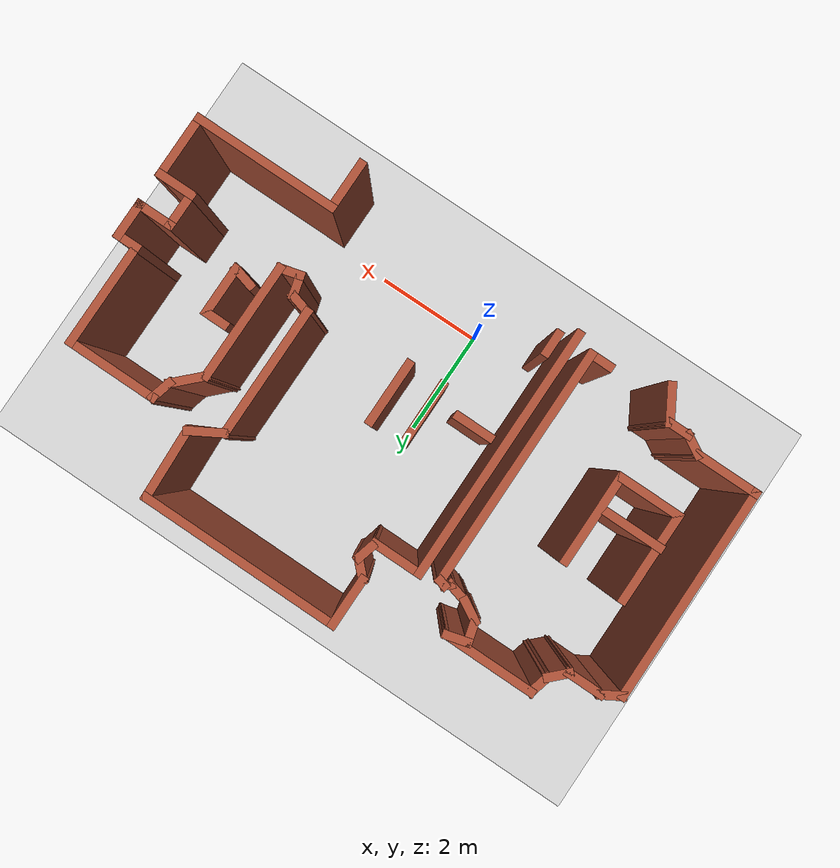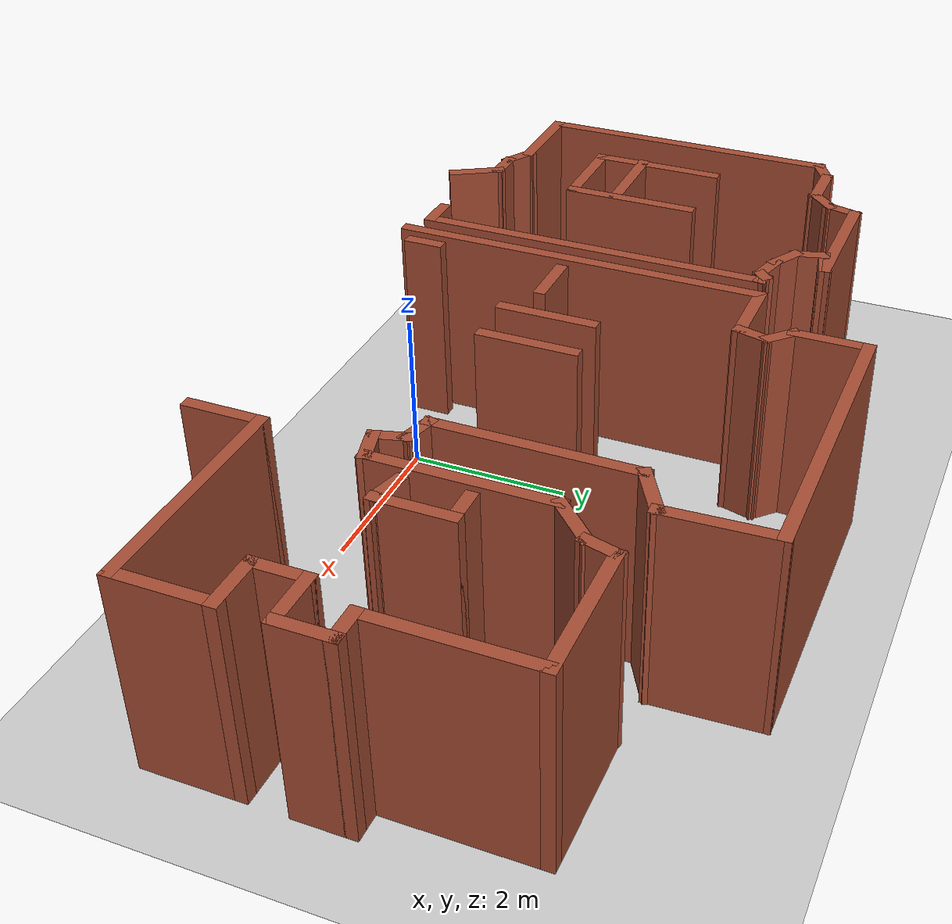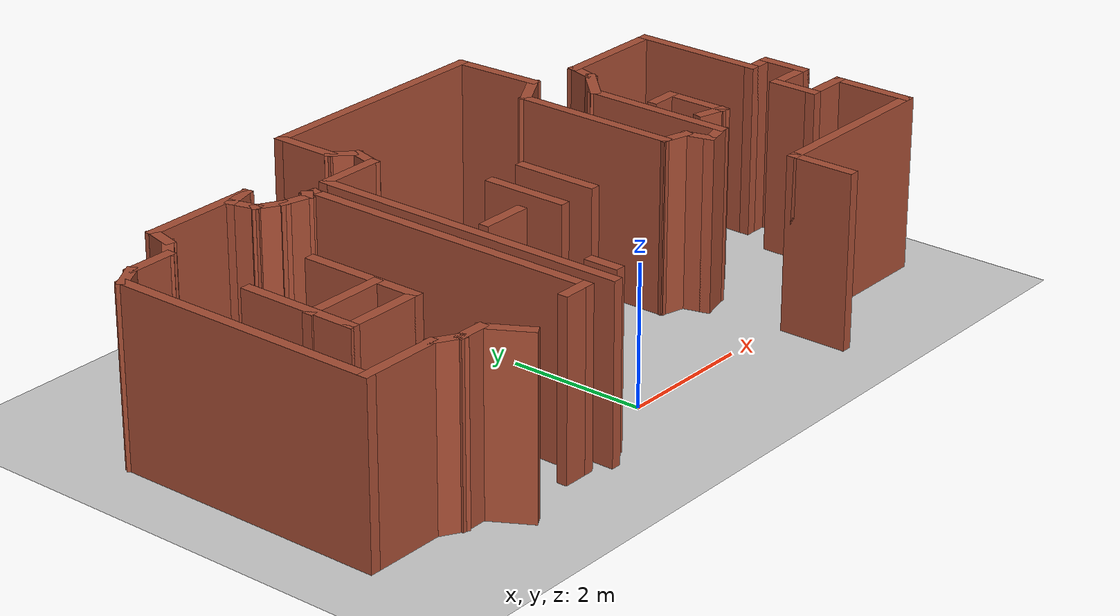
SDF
<sdf version="1.6">
 <world name="default">
  <model name="ground_plane">
   <static>1</static>
   <link name="link">
    <collision name="collision">
     <geometry><plane><normal>0 0 1</normal><size>100 100</size></plane></geometry>
     <surface>
      <contact><collide_bitmask>65535</collide_bitmask></contact>
      <friction><ode><mu>100</mu><mu2>50</mu2></ode></friction>
     </surface>
    </collision>
    <visual name="visual">
     <cast_shadows>0</cast_shadows>
     <geometry><plane><normal>0 0 1</normal><size>100 100</size></plane></geometry>
     <material>
      <script><uri>file://media/materials/scripts/gazebo.material</uri><name>Gazebo/Grey</name></script>
     </material>
    </visual>
   </link>
  </model>
  <model name="map_17">
   <pose>0.240525 -0.952018 0 0 -0 0</pose>
   <link name="Wall_0">
    <collision name="Wall_0_Collision">
     <geometry><box><size>3.75 0.15 2.5</size></box></geometry>
     <pose>0 0 1.25 0 -0 0</pose>
    </collision>
    <visual name="Wall_0_Visual">
     <pose>0 0 1.25 0 -0 0</pose>
     <geometry><box><size>3.75 0.15 2.5</size></box></geometry>
     <material>
      <script><uri>file://media/materials/scripts/gazebo.material</uri><name>Gazebo/Bricks</name></script>
      <ambient>1 1 1 1</ambient>
     </material>
     <meta><layer>0</layer></meta>
    </visual>
    <pose>0.846782 6.31181 0 0 -0 3.14159</pose>
   </link>
   <link name="Wall_1">
    <collision name="Wall_1_Collision">
     <geometry><box><size>1 0.15 2.5</size></box></geometry>
     <pose>0 0 1.25 0 -0 0</pose>
    </collision>
    <visual name="Wall_1_Visual">
     <pose>0 0 1.25 0 -0 0</pose>
     <geometry><box><size>1 0.15 2.5</size></box></geometry>
     <material>
      <script><uri>file://media/materials/scripts/gazebo.material</uri><name>Gazebo/Bricks</name></script>
      <ambient>1 1 1 1</ambient>
     </material>
     <meta><layer>0</layer></meta>
    </visual>
    <pose>-0.953218 5.88681 0 0 -0 -1.5708</pose>
   </link>
   <link name="Wall_10">
    <collision name="Wall_10_Collision">
     <geometry><box><size>0.5 0.15 2.5</size></box></geometry>
     <pose>0 0 1.25 0 -0 0</pose>
    </collision>
    <visual name="Wall_10_Visual">
     <pose>0 0 1.25 0 -0 0</pose>
     <geometry><box><size>0.5 0.15 2.5</size></box></geometry>
     <material>
      <script><uri>file://media/materials/scripts/gazebo.material</uri><name>Gazebo/Bricks</name></script>
      <ambient>1 1 1 1</ambient>
     </material>
     <meta><layer>0</layer></meta>
    </visual>
    <pose>-2.15939 0.435665 0 0 -0 0</pose>
   </link>
   <link name="Wall_100">
    <collision name="Wall_100_Collision">
     <geometry><box><size>0.5 0.15 2.5</size></box></geometry>
     <pose>0 0 1.25 0 -0 0</pose>
    </collision>
    <visual name="Wall_100_Visual">
     <pose>0 0 1.25 0 -0 0</pose>
     <geometry><box><size>0.5 0.15 2.5</size></box></geometry>
     <material>
      <script><uri>file://media/materials/scripts/gazebo.material</uri><name>Gazebo/Bricks</name></script>
      <ambient>1 1 1 1</ambient>
     </material>
     <meta><layer>0</layer></meta>
    </visual>
    <pose>2.56581 2.15806 0 0 -0 1.8326</pose>
   </link>
   <link name="Wall_101">
    <collision name="Wall_101_Collision">
     <geometry><box><size>0.5 0.15 2.5</size></box></geometry>
     <pose>0 0 1.25 0 -0 0</pose>
    </collision>
    <visual name="Wall_101_Visual">
     <pose>0 0 1.25 0 -0 0</pose>
     <geometry><box><size>0.5 0.15 2.5</size></box></geometry>
     <material>
      <script><uri>file://media/materials/scripts/gazebo.material</uri><name>Gazebo/Bricks</name></script>
      <ambient>1 1 1 1</ambient>
     </material>
     <meta><layer>0</layer></meta>
    </visual>
    <pose>2.35148 2.37239 0 0 -0 2.87979</pose>
   </link>
   <link name="Wall_102">
    <collision name="Wall_102_Collision">
     <geometry><box><size>2.5 0.15 2.5</size></box></geometry>
     <pose>0 0 1.25 0 -0 0</pose>
    </collision>
    <visual name="Wall_102_Visual">
     <pose>0 0 1.25 0 -0 0</pose>
     <geometry><box><size>2.5 0.15 2.5</size></box></geometry>
     <material>
      <script><uri>file://media/materials/scripts/gazebo.material</uri><name>Gazebo/Bricks</name></script>
      <ambient>1 1 1 1</ambient>
     </material>
     <meta><layer>0</layer></meta>
    </visual>
    <pose>2.18244 3.59268 0 0 -0 1.5708</pose>
   </link>
   <link name="Wall_103">
    <collision name="Wall_103_Collision">
     <geometry><box><size>0.75 0.15 2.5</size></box></geometry>
     <pose>0 0 1.25 0 -0 0</pose>
    </collision>
    <visual name="Wall_103_Visual">
     <pose>0 0 1.25 0 -0 0</pose>
     <geometry><box><size>0.75 0.15 2.5</size></box></geometry>
     <material>
      <script><uri>file://media/materials/scripts/gazebo.material</uri><name>Gazebo/Bricks</name></script>
      <ambient>1 1 1 1</ambient>
     </material>
     <meta><layer>0</layer></meta>
    </visual>
    <pose>2.44225 4.91768 0 0 -0 0.523599</pose>
   </link>
   <link name="Wall_104">
    <collision name="Wall_104_Collision">
     <geometry><box><size>1.39536 0.15 2.5</size></box></geometry>
     <pose>0 0 1.25 0 -0 0</pose>
    </collision>
    <visual name="Wall_104_Visual">
     <pose>0 0 1.25 0 -0 0</pose>
     <geometry><box><size>1.39536 0.15 2.5</size></box></geometry>
     <material>
      <script><uri>file://media/materials/scripts/gazebo.material</uri><name>Gazebo/Bricks</name></script>
      <ambient>1 1 1 1</ambient>
     </material>
     <meta><layer>0</layer></meta>
    </visual>
    <pose>2.67442 5.68975 0 0 -0 1.61519</pose>
   </link>
   <link name="Wall_106">
    <collision name="Wall_106_Collision">
     <geometry><box><size>1.75 0.15 2.5</size></box></geometry>
     <pose>0 0 1.25 0 -0 0</pose>
    </collision>
    <visual name="Wall_106_Visual">
     <pose>0 0 1.25 0 -0 0</pose>
     <geometry><box><size>1.75 0.15 2.5</size></box></geometry>
     <material>
      <script><uri>file://media/materials/scripts/gazebo.material</uri><name>Gazebo/Bricks</name></script>
      <ambient>1 1 1 1</ambient>
     </material>
     <meta><layer>0</layer></meta>
    </visual>
    <pose>-4.56187 2.61239 0 0 -0 -1.5708</pose>
   </link>
   <link name="Wall_107">
    <collision name="Wall_107_Collision">
     <geometry><box><size>1.25 0.15 2.5</size></box></geometry>
     <pose>0 0 1.25 0 -0 0</pose>
    </collision>
    <visual name="Wall_107_Visual">
     <pose>0 0 1.25 0 -0 0</pose>
     <geometry><box><size>1.25 0.15 2.5</size></box></geometry>
     <material>
      <script><uri>file://media/materials/scripts/gazebo.material</uri><name>Gazebo/Bricks</name></script>
      <ambient>1 1 1 1</ambient>
     </material>
     <meta><layer>0</layer></meta>
    </visual>
    <pose>-4.01187 1.81239 0 0 -0 0</pose>
   </link>
   <link name="Wall_108">
    <collision name="Wall_108_Collision">
     <geometry><box><size>1.75 0.15 2.5</size></box></geometry>
     <pose>0 0 1.25 0 -0 0</pose>
    </collision>
    <visual name="Wall_108_Visual">
     <pose>0 0 1.25 0 -0 0</pose>
     <geometry><box><size>1.75 0.15 2.5</size></box></geometry>
     <material>
      <script><uri>file://media/materials/scripts/gazebo.material</uri><name>Gazebo/Bricks</name></script>
      <ambient>1 1 1 1</ambient>
     </material>
     <meta><layer>0</layer></meta>
    </visual>
    <pose>-3.46187 2.61239 0 0 -0 1.5708</pose>
   </link>
   <link name="Wall_11">
    <collision name="Wall_11_Collision">
     <geometry><box><size>4.5 0.15 2.5</size></box></geometry>
     <pose>0 0 1.25 0 -0 0</pose>
    </collision>
    <visual name="Wall_11_Visual">
     <pose>0 0 1.25 0 -0 0</pose>
     <geometry><box><size>4.5 0.15 2.5</size></box></geometry>
     <material>
      <script><uri>file://media/materials/scripts/gazebo.material</uri><name>Gazebo/Bricks</name></script>
      <ambient>1 1 1 1</ambient>
     </material>
     <meta><layer>0</layer></meta>
    </visual>
    <pose>-1.98439 2.61066 0 0 -0 1.5708</pose>
   </link>
   <link name="Wall_110">
    <collision name="Wall_110_Collision">
     <geometry><box><size>1.25 0.15 2.5</size></box></geometry>
     <pose>0 0 1.25 0 -0 0</pose>
    </collision>
    <visual name="Wall_110_Visual">
     <pose>0 0 1.25 0 -0 0</pose>
     <geometry><box><size>1.25 0.15 2.5</size></box></geometry>
     <material>
      <script><uri>file://media/materials/scripts/gazebo.material</uri><name>Gazebo/Bricks</name></script>
      <ambient>1 1 1 1</ambient>
     </material>
     <meta><layer>0</layer></meta>
    </visual>
    <pose>-4.03847 2.40158 0 0 -0 0</pose>
   </link>
   <link name="Wall_112">
    <collision name="Wall_112_Collision">
     <geometry><box><size>1.25 0.15 2.5</size></box></geometry>
     <pose>0 0 1.25 0 -0 0</pose>
    </collision>
    <visual name="Wall_112_Visual">
     <pose>0 0 1.25 0 -0 0</pose>
     <geometry><box><size>1.25 0.15 2.5</size></box></geometry>
     <material>
      <script><uri>file://media/materials/scripts/gazebo.material</uri><name>Gazebo/Bricks</name></script>
      <ambient>1 1 1 1</ambient>
     </material>
     <meta><layer>0</layer></meta>
    </visual>
    <pose>-0.27924 2.72939 0 0 -0 -1.5708</pose>
   </link>
   <link name="Wall_114">
    <collision name="Wall_114_Collision">
     <geometry><box><size>1.25 0.15 2.5</size></box></geometry>
     <pose>0 0 1.25 0 -0 0</pose>
    </collision>
    <visual name="Wall_114_Visual">
     <pose>0 0 1.25 0 -0 0</pose>
     <geometry><box><size>1.25 0.15 2.5</size></box></geometry>
     <material>
      <script><uri>file://media/materials/scripts/gazebo.material</uri><name>Gazebo/Bricks</name></script>
      <ambient>1 1 1 1</ambient>
     </material>
     <meta><layer>0</layer></meta>
    </visual>
    <pose>0.359165 2.75599 0 0 -0 -1.5708</pose>
   </link>
   <link name="Wall_116">
    <collision name="Wall_116_Collision">
     <geometry><box><size>0.75 0.15 2.5</size></box></geometry>
     <pose>0 0 1.25 0 -0 0</pose>
    </collision>
    <visual name="Wall_116_Visual">
     <pose>0 0 1.25 0 -0 0</pose>
     <geometry><box><size>0.75 0.15 2.5</size></box></geometry>
     <material>
      <script><uri>file://media/materials/scripts/gazebo.material</uri><name>Gazebo/Bricks</name></script>
      <ambient>1 1 1 1</ambient>
     </material>
     <meta><layer>0</layer></meta>
    </visual>
    <pose>-1.06985 2.45478 0 0 -0 0</pose>
   </link>
   <link name="Wall_118">
    <collision name="Wall_118_Collision">
     <geometry><box><size>0.5 0.15 2.5</size></box></geometry>
     <pose>0 0 1.25 0 -0 0</pose>
    </collision>
    <visual name="Wall_118_Visual">
     <pose>0 0 1.25 0 -0 0</pose>
     <geometry><box><size>0.5 0.15 2.5</size></box></geometry>
     <material>
      <script><uri>file://media/materials/scripts/gazebo.material</uri><name>Gazebo/Bricks</name></script>
      <ambient>1 1 1 1</ambient>
     </material>
     <meta><layer>0</layer></meta>
    </visual>
    <pose>3.35379 3.33259 0 0 -0 0</pose>
   </link>
   <link name="Wall_119">
    <collision name="Wall_119_Collision">
     <geometry><box><size>1 0.15 2.5</size></box></geometry>
     <pose>0 0 1.25 0 -0 0</pose>
    </collision>
    <visual name="Wall_119_Visual">
     <pose>0 0 1.25 0 -0 0</pose>
     <geometry><box><size>1 0.15 2.5</size></box></geometry>
     <material>
      <script><uri>file://media/materials/scripts/gazebo.material</uri><name>Gazebo/Bricks</name></script>
      <ambient>1 1 1 1</ambient>
     </material>
     <meta><layer>0</layer></meta>
    </visual>
    <pose>3.52879 2.90759 0 0 -0 -1.5708</pose>
   </link>
   <link name="Wall_12">
    <collision name="Wall_12_Collision">
     <geometry><box><size>0.25 0.15 2.5</size></box></geometry>
     <pose>0 0 1.25 0 -0 0</pose>
    </collision>
    <visual name="Wall_12_Visual">
     <pose>0 0 1.25 0 -0 0</pose>
     <geometry><box><size>0.25 0.15 2.5</size></box></geometry>
     <material>
      <script><uri>file://media/materials/scripts/gazebo.material</uri><name>Gazebo/Bricks</name></script>
      <ambient>1 1 1 1</ambient>
     </material>
     <meta><layer>0</layer></meta>
    </visual>
    <pose>-2.03269 4.79861 0 0 -0 2.87979</pose>
   </link>
   <link name="Wall_120">
    <collision name="Wall_120_Collision">
     <geometry><box><size>0.5 0.15 2.5</size></box></geometry>
     <pose>0 0 1.25 0 -0 0</pose>
    </collision>
    <visual name="Wall_120_Visual">
     <pose>0 0 1.25 0 -0 0</pose>
     <geometry><box><size>0.5 0.15 2.5</size></box></geometry>
     <material>
      <script><uri>file://media/materials/scripts/gazebo.material</uri><name>Gazebo/Bricks</name></script>
      <ambient>1 1 1 1</ambient>
     </material>
     <meta><layer>0</layer></meta>
    </visual>
    <pose>3.35975 2.52788 0 0 -0 2.87979</pose>
   </link>
   <link name="Wall_126">
    <collision name="Wall_126_Collision">
     <geometry><box><size>0.5 0.15 2.5</size></box></geometry>
     <pose>0 0 1.25 0 -0 0</pose>
    </collision>
    <visual name="Wall_126_Visual">
     <pose>0 0 1.25 0 -0 0</pose>
     <geometry><box><size>0.5 0.15 2.5</size></box></geometry>
     <material>
      <script><uri>file://media/materials/scripts/gazebo.material</uri><name>Gazebo/Bricks</name></script>
      <ambient>1 1 1 1</ambient>
     </material>
     <meta><layer>0</layer></meta>
    </visual>
    <pose>-1.36985 0.634769 0 0 -0 1.5708</pose>
   </link>
   <link name="Wall_13">
    <collision name="Wall_13_Collision">
     <geometry><box><size>0.25 0.15 2.5</size></box></geometry>
     <pose>0 0 1.25 0 -0 0</pose>
    </collision>
    <visual name="Wall_13_Visual">
     <pose>0 0 1.25 0 -0 0</pose>
     <geometry><box><size>0.25 0.15 2.5</size></box></geometry>
     <material>
      <script><uri>file://media/materials/scripts/gazebo.material</uri><name>Gazebo/Bricks</name></script>
      <ambient>1 1 1 1</ambient>
     </material>
     <meta><layer>0</layer></meta>
    </visual>
    <pose>-2.11634 4.77619 0 0 -0 -2.35619</pose>
   </link>
   <link name="Wall_14">
    <collision name="Wall_14_Collision">
     <geometry><box><size>0.5 0.15 2.5</size></box></geometry>
     <pose>0 0 1.25 0 -0 0</pose>
    </collision>
    <visual name="Wall_14_Visual">
     <pose>0 0 1.25 0 -0 0</pose>
     <geometry><box><size>0.5 0.15 2.5</size></box></geometry>
     <material>
      <script><uri>file://media/materials/scripts/gazebo.material</uri><name>Gazebo/Bricks</name></script>
      <ambient>1 1 1 1</ambient>
     </material>
     <meta><layer>0</layer></meta>
    </visual>
    <pose>-2.32073 4.78613 0 0 -0 2.87979</pose>
   </link>
   <link name="Wall_15">
    <collision name="Wall_15_Collision">
     <geometry><box><size>0.5 0.15 2.5</size></box></geometry>
     <pose>0 0 1.25 0 -0 0</pose>
    </collision>
    <visual name="Wall_15_Visual">
     <pose>0 0 1.25 0 -0 0</pose>
     <geometry><box><size>0.5 0.15 2.5</size></box></geometry>
     <material>
      <script><uri>file://media/materials/scripts/gazebo.material</uri><name>Gazebo/Bricks</name></script>
      <ambient>1 1 1 1</ambient>
     </material>
     <meta><layer>0</layer></meta>
    </visual>
    <pose>-2.64132 4.91892 0 0 -0 2.61799</pose>
   </link>
   <link name="Wall_16">
    <collision name="Wall_16_Collision">
     <geometry><box><size>0.5 0.15 2.5</size></box></geometry>
     <pose>0 0 1.25 0 -0 0</pose>
    </collision>
    <visual name="Wall_16_Visual">
     <pose>0 0 1.25 0 -0 0</pose>
     <geometry><box><size>0.5 0.15 2.5</size></box></geometry>
     <material>
      <script><uri>file://media/materials/scripts/gazebo.material</uri><name>Gazebo/Bricks</name></script>
      <ambient>1 1 1 1</ambient>
     </material>
     <meta><layer>0</layer></meta>
    </visual>
    <pose>-2.83817 5.17546 0 0 -0 1.8326</pose>
   </link>
   <link name="Wall_17">
    <collision name="Wall_17_Collision">
     <geometry><box><size>0.5 0.15 2.5</size></box></geometry>
     <pose>0 0 1.25 0 -0 0</pose>
    </collision>
    <visual name="Wall_17_Visual">
     <pose>0 0 1.25 0 -0 0</pose>
     <geometry><box><size>0.5 0.15 2.5</size></box></geometry>
     <material>
      <script><uri>file://media/materials/scripts/gazebo.material</uri><name>Gazebo/Bricks</name></script>
      <ambient>1 1 1 1</ambient>
     </material>
     <meta><layer>0</layer></meta>
    </visual>
    <pose>-2.71443 5.38979 0 0 -0 0.261799</pose>
   </link>
   <link name="Wall_18">
    <collision name="Wall_18_Collision">
     <geometry><box><size>1.75 0.15 2.5</size></box></geometry>
     <pose>0 0 1.25 0 -0 0</pose>
    </collision>
    <visual name="Wall_18_Visual">
     <pose>0 0 1.25 0 -0 0</pose>
     <geometry><box><size>1.75 0.15 2.5</size></box></geometry>
     <material>
      <script><uri>file://media/materials/scripts/gazebo.material</uri><name>Gazebo/Bricks</name></script>
      <ambient>1 1 1 1</ambient>
     </material>
     <meta><layer>0</layer></meta>
    </visual>
    <pose>-3.34539 5.43508 0 0 -0 3.14159</pose>
   </link>
   <link name="Wall_19">
    <collision name="Wall_19_Collision">
     <geometry><box><size>0.5 0.15 2.5</size></box></geometry>
     <pose>0 0 1.25 0 -0 0</pose>
    </collision>
    <visual name="Wall_19_Visual">
     <pose>0 0 1.25 0 -0 0</pose>
     <geometry><box><size>0.5 0.15 2.5</size></box></geometry>
     <material>
      <script><uri>file://media/materials/scripts/gazebo.material</uri><name>Gazebo/Bricks</name></script>
      <ambient>1 1 1 1</ambient>
     </material>
     <meta><layer>0</layer></meta>
    </visual>
    <pose>-4.19068 5.26605 0 0 -0 -1.8326</pose>
   </link>
   <link name="Wall_2">
    <collision name="Wall_2_Collision">
     <geometry><box><size>0.5 0.15 2.5</size></box></geometry>
     <pose>0 0 1.25 0 -0 0</pose>
    </collision>
    <visual name="Wall_2_Visual">
     <pose>0 0 1.25 0 -0 0</pose>
     <geometry><box><size>0.5 0.15 2.5</size></box></geometry>
     <material>
      <script><uri>file://media/materials/scripts/gazebo.material</uri><name>Gazebo/Bricks</name></script>
      <ambient>1 1 1 1</ambient>
     </material>
     <meta><layer>0</layer></meta>
    </visual>
    <pose>-0.829474 5.33807 0 0 -0 -0.785398</pose>
   </link>
   <link name="Wall_20">
    <collision name="Wall_20_Collision">
     <geometry><box><size>0.5 0.15 2.5</size></box></geometry>
     <pose>0 0 1.25 0 -0 0</pose>
    </collision>
    <visual name="Wall_20_Visual">
     <pose>0 0 1.25 0 -0 0</pose>
     <geometry><box><size>0.5 0.15 2.5</size></box></geometry>
     <material>
      <script><uri>file://media/materials/scripts/gazebo.material</uri><name>Gazebo/Bricks</name></script>
      <ambient>1 1 1 1</ambient>
     </material>
     <meta><layer>0</layer></meta>
    </visual>
    <pose>-4.35972 4.97326 0 0 -0 -2.35619</pose>
   </link>
   <link name="Wall_21">
    <collision name="Wall_21_Collision">
     <geometry><box><size>0.75 0.15 2.5</size></box></geometry>
     <pose>0 0 1.25 0 -0 0</pose>
    </collision>
    <visual name="Wall_21_Visual">
     <pose>0 0 1.25 0 -0 0</pose>
     <geometry><box><size>0.75 0.15 2.5</size></box></geometry>
     <material>
      <script><uri>file://media/materials/scripts/gazebo.material</uri><name>Gazebo/Bricks</name></script>
      <ambient>1 1 1 1</ambient>
     </material>
     <meta><layer>0</layer></meta>
    </visual>
    <pose>-4.78346 4.84952 0 0 -0 3.14159</pose>
   </link>
   <link name="Wall_22">
    <collision name="Wall_22_Collision">
     <geometry><box><size>0.5 0.15 2.5</size></box></geometry>
     <pose>0 0 1.25 0 -0 0</pose>
    </collision>
    <visual name="Wall_22_Visual">
     <pose>0 0 1.25 0 -0 0</pose>
     <geometry><box><size>0.5 0.15 2.5</size></box></geometry>
     <material>
      <script><uri>file://media/materials/scripts/gazebo.material</uri><name>Gazebo/Bricks</name></script>
      <ambient>1 1 1 1</ambient>
     </material>
     <meta><layer>0</layer></meta>
    </visual>
    <pose>-5.23502 4.76202 0 0 -0 -2.61799</pose>
   </link>
   <link name="Wall_23">
    <collision name="Wall_23_Collision">
     <geometry><box><size>4 0.15 2.5</size></box></geometry>
     <pose>0 0 1.25 0 -0 0</pose>
    </collision>
    <visual name="Wall_23_Visual">
     <pose>0 0 1.25 0 -0 0</pose>
     <geometry><box><size>4 0.15 2.5</size></box></geometry>
     <material>
      <script><uri>file://media/materials/scripts/gazebo.material</uri><name>Gazebo/Bricks</name></script>
      <ambient>1 1 1 1</ambient>
     </material>
     <meta><layer>0</layer></meta>
    </visual>
    <pose>-5.38657 2.74952 0 0 -0 -1.5708</pose>
   </link>
   <link name="Wall_24">
    <collision name="Wall_24_Collision">
     <geometry><box><size>1.25 0.15 2.5</size></box></geometry>
     <pose>0 0 1.25 0 -0 0</pose>
    </collision>
    <visual name="Wall_24_Visual">
     <pose>0 0 1.25 0 -0 0</pose>
     <geometry><box><size>1.25 0.15 2.5</size></box></geometry>
     <material>
      <script><uri>file://media/materials/scripts/gazebo.material</uri><name>Gazebo/Bricks</name></script>
      <ambient>1 1 1 1</ambient>
     </material>
     <meta><layer>0</layer></meta>
    </visual>
    <pose>-4.83657 0.824522 0 0 -0 0</pose>
   </link>
   <link name="Wall_25">
    <collision name="Wall_25_Collision">
     <geometry><box><size>0.5 0.15 2.5</size></box></geometry>
     <pose>0 0 1.25 0 -0 0</pose>
    </collision>
    <visual name="Wall_25_Visual">
     <pose>0 0 1.25 0 -0 0</pose>
     <geometry><box><size>0.5 0.15 2.5</size></box></geometry>
     <material>
      <script><uri>file://media/materials/scripts/gazebo.material</uri><name>Gazebo/Bricks</name></script>
      <ambient>1 1 1 1</ambient>
     </material>
     <meta><layer>0</layer></meta>
    </visual>
    <pose>-4.13502 0.737022 0 0 -0 -0.523599</pose>
   </link>
   <link name="Wall_26">
    <collision name="Wall_26_Collision">
     <geometry><box><size>0.5 0.15 2.5</size></box></geometry>
     <pose>0 0 1.25 0 -0 0</pose>
    </collision>
    <visual name="Wall_26_Visual">
     <pose>0 0 1.25 0 -0 0</pose>
     <geometry><box><size>0.5 0.15 2.5</size></box></geometry>
     <material>
      <script><uri>file://media/materials/scripts/gazebo.material</uri><name>Gazebo/Bricks</name></script>
      <ambient>1 1 1 1</ambient>
     </material>
     <meta><layer>0</layer></meta>
    </visual>
    <pose>-3.80846 0.649522 0 0 -0 0</pose>
   </link>
   <link name="Wall_27">
    <collision name="Wall_27_Collision">
     <geometry><box><size>0.75 0.15 2.5</size></box></geometry>
     <pose>0 0 1.25 0 -0 0</pose>
    </collision>
    <visual name="Wall_27_Visual">
     <pose>0 0 1.25 0 -0 0</pose>
     <geometry><box><size>0.75 0.15 2.5</size></box></geometry>
     <material>
      <script><uri>file://media/materials/scripts/gazebo.material</uri><name>Gazebo/Bricks</name></script>
      <ambient>1 1 1 1</ambient>
     </material>
     <meta><layer>0</layer></meta>
    </visual>
    <pose>-3.48346 0.389714 0 0 -0 -1.0472</pose>
   </link>
   <link name="Wall_3">
    <collision name="Wall_3_Collision">
     <geometry><box><size>0.5 0.15 2.5</size></box></geometry>
     <pose>0 0 1.25 0 -0 0</pose>
    </collision>
    <visual name="Wall_3_Visual">
     <pose>0 0 1.25 0 -0 0</pose>
     <geometry><box><size>0.5 0.15 2.5</size></box></geometry>
     <material>
      <script><uri>file://media/materials/scripts/gazebo.material</uri><name>Gazebo/Bricks</name></script>
      <ambient>1 1 1 1</ambient>
     </material>
     <meta><layer>0</layer></meta>
    </visual>
    <pose>-0.751024 5.04529 0 0 -0 -1.8326</pose>
   </link>
   <link name="Wall_4">
    <collision name="Wall_4_Collision">
     <geometry><box><size>1 0.15 2.5</size></box></geometry>
     <pose>0 0 1.25 0 -0 0</pose>
    </collision>
    <visual name="Wall_4_Visual">
     <pose>0 0 1.25 0 -0 0</pose>
     <geometry><box><size>1 0.15 2.5</size></box></geometry>
     <material>
      <script><uri>file://media/materials/scripts/gazebo.material</uri><name>Gazebo/Bricks</name></script>
      <ambient>1 1 1 1</ambient>
     </material>
     <meta><layer>0</layer></meta>
    </visual>
    <pose>-1.22132 4.87625 0 0 -0 3.14159</pose>
   </link>
   <link name="Wall_5">
    <collision name="Wall_5_Collision">
     <geometry><box><size>4.75 0.15 2.5</size></box></geometry>
     <pose>0 0 1.25 0 -0 0</pose>
    </collision>
    <visual name="Wall_5_Visual">
     <pose>0 0 1.25 0 -0 0</pose>
     <geometry><box><size>4.75 0.15 2.5</size></box></geometry>
     <material>
      <script><uri>file://media/materials/scripts/gazebo.material</uri><name>Gazebo/Bricks</name></script>
      <ambient>1 1 1 1</ambient>
     </material>
     <meta><layer>0</layer></meta>
    </visual>
    <pose>-1.64632 2.57625 0 0 -0 -1.5708</pose>
   </link>
   <link name="Wall_82">
    <collision name="Wall_82_Collision">
     <geometry><box><size>1 0.15 2.5</size></box></geometry>
     <pose>0 0 1.25 0 -0 0</pose>
    </collision>
    <visual name="Wall_82_Visual">
     <pose>0 0 1.25 0 -0 0</pose>
     <geometry><box><size>1 0.15 2.5</size></box></geometry>
     <material>
      <script><uri>file://media/materials/scripts/gazebo.material</uri><name>Gazebo/Bricks</name></script>
      <ambient>1 1 1 1</ambient>
     </material>
     <meta><layer>0</layer></meta>
    </visual>
    <pose>2.81402 0.366946 0 0 -0 1.5708</pose>
   </link>
   <link name="Wall_83">
    <collision name="Wall_83_Collision">
     <geometry><box><size>2.75 0.15 2.5</size></box></geometry>
     <pose>0 0 1.25 0 -0 0</pose>
    </collision>
    <visual name="Wall_83_Visual">
     <pose>0 0 1.25 0 -0 0</pose>
     <geometry><box><size>2.75 0.15 2.5</size></box></geometry>
     <material>
      <script><uri>file://media/materials/scripts/gazebo.material</uri><name>Gazebo/Bricks</name></script>
      <ambient>1 1 1 1</ambient>
     </material>
     <meta><layer>0</layer></meta>
    </visual>
    <pose>4.11402 0.791946 0 0 -0 0</pose>
   </link>
   <link name="Wall_84">
    <collision name="Wall_84_Collision">
     <geometry><box><size>1.25 0.15 2.5</size></box></geometry>
     <pose>0 0 1.25 0 -0 0</pose>
    </collision>
    <visual name="Wall_84_Visual">
     <pose>0 0 1.25 0 -0 0</pose>
     <geometry><box><size>1.25 0.15 2.5</size></box></geometry>
     <material>
      <script><uri>file://media/materials/scripts/gazebo.material</uri><name>Gazebo/Bricks</name></script>
      <ambient>1 1 1 1</ambient>
     </material>
     <meta><layer>0</layer></meta>
    </visual>
    <pose>5.41402 1.34195 0 0 -0 1.5708</pose>
   </link>
   <link name="Wall_89">
    <collision name="Wall_89_Collision">
     <geometry><box><size>0.75 0.15 2.5</size></box></geometry>
     <pose>0 0 1.25 0 -0 0</pose>
    </collision>
    <visual name="Wall_89_Visual">
     <pose>0 0 1.25 0 -0 0</pose>
     <geometry><box><size>0.75 0.15 2.5</size></box></geometry>
     <material>
      <script><uri>file://media/materials/scripts/gazebo.material</uri><name>Gazebo/Bricks</name></script>
      <ambient>1 1 1 1</ambient>
     </material>
     <meta><layer>0</layer></meta>
    </visual>
    <pose>5.11402 1.89195 0 0 -0 3.14159</pose>
   </link>
   <link name="Wall_90">
    <collision name="Wall_90_Collision">
     <geometry><box><size>0.75 0.15 2.5</size></box></geometry>
     <pose>0 0 1.25 0 -0 0</pose>
    </collision>
    <visual name="Wall_90_Visual">
     <pose>0 0 1.25 0 -0 0</pose>
     <geometry><box><size>0.75 0.15 2.5</size></box></geometry>
     <material>
      <script><uri>file://media/materials/scripts/gazebo.material</uri><name>Gazebo/Bricks</name></script>
      <ambient>1 1 1 1</ambient>
     </material>
     <meta><layer>0</layer></meta>
    </visual>
    <pose>4.81402 2.19195 0 0 -0 1.5708</pose>
   </link>
   <link name="Wall_91">
    <collision name="Wall_91_Collision">
     <geometry><box><size>0.75 0.15 2.5</size></box></geometry>
     <pose>0 0 1.25 0 -0 0</pose>
    </collision>
    <visual name="Wall_91_Visual">
     <pose>0 0 1.25 0 -0 0</pose>
     <geometry><box><size>0.75 0.15 2.5</size></box></geometry>
     <material>
      <script><uri>file://media/materials/scripts/gazebo.material</uri><name>Gazebo/Bricks</name></script>
      <ambient>1 1 1 1</ambient>
     </material>
     <meta><layer>0</layer></meta>
    </visual>
    <pose>5.11402 2.49195 0 0 -0 0</pose>
   </link>
   <link name="Wall_92">
    <collision name="Wall_92_Collision">
     <geometry><box><size>0.75 0.15 2.5</size></box></geometry>
     <pose>0 0 1.25 0 -0 0</pose>
    </collision>
    <visual name="Wall_92_Visual">
     <pose>0 0 1.25 0 -0 0</pose>
     <geometry><box><size>0.75 0.15 2.5</size></box></geometry>
     <material>
      <script><uri>file://media/materials/scripts/gazebo.material</uri><name>Gazebo/Bricks</name></script>
      <ambient>1 1 1 1</ambient>
     </material>
     <meta><layer>0</layer></meta>
    </visual>
    <pose>5.41402 2.79195 0 0 -0 1.5708</pose>
   </link>
   <link name="Wall_93">
    <collision name="Wall_93_Collision">
     <geometry><box><size>0.5 0.15 2.5</size></box></geometry>
     <pose>0 0 1.25 0 -0 0</pose>
    </collision>
    <visual name="Wall_93_Visual">
     <pose>0 0 1.25 0 -0 0</pose>
     <geometry><box><size>0.5 0.15 2.5</size></box></geometry>
     <material>
      <script><uri>file://media/materials/scripts/gazebo.material</uri><name>Gazebo/Bricks</name></script>
      <ambient>1 1 1 1</ambient>
     </material>
     <meta><layer>0</layer></meta>
    </visual>
    <pose>5.23902 3.09195 0 0 -0 3.14159</pose>
   </link>
   <link name="Wall_94">
    <collision name="Wall_94_Collision">
     <geometry><box><size>2 0.15 2.5</size></box></geometry>
     <pose>0 0 1.25 0 -0 0</pose>
    </collision>
    <visual name="Wall_94_Visual">
     <pose>0 0 1.25 0 -0 0</pose>
     <geometry><box><size>2 0.15 2.5</size></box></geometry>
     <material>
      <script><uri>file://media/materials/scripts/gazebo.material</uri><name>Gazebo/Bricks</name></script>
      <ambient>1 1 1 1</ambient>
     </material>
     <meta><layer>0</layer></meta>
    </visual>
    <pose>5.06402 4.01695 0 0 -0 1.5708</pose>
   </link>
   <link name="Wall_95">
    <collision name="Wall_95_Collision">
     <geometry><box><size>1.75 0.15 2.5</size></box></geometry>
     <pose>0 0 1.25 0 -0 0</pose>
    </collision>
    <visual name="Wall_95_Visual">
     <pose>0 0 1.25 0 -0 0</pose>
     <geometry><box><size>1.75 0.15 2.5</size></box></geometry>
     <material>
      <script><uri>file://media/materials/scripts/gazebo.material</uri><name>Gazebo/Bricks</name></script>
      <ambient>1 1 1 1</ambient>
     </material>
     <meta><layer>0</layer></meta>
    </visual>
    <pose>4.26403 4.94195 0 0 -0 3.14159</pose>
   </link>
   <link name="Wall_96">
    <collision name="Wall_96_Collision">
     <geometry><box><size>0.5 0.15 2.5</size></box></geometry>
     <pose>0 0 1.25 0 -0 0</pose>
    </collision>
    <visual name="Wall_96_Visual">
     <pose>0 0 1.25 0 -0 0</pose>
     <geometry><box><size>0.5 0.15 2.5</size></box></geometry>
     <material>
      <script><uri>file://media/materials/scripts/gazebo.material</uri><name>Gazebo/Bricks</name></script>
      <ambient>1 1 1 1</ambient>
     </material>
     <meta><layer>0</layer></meta>
    </visual>
    <pose>3.41873 4.77291 0 0 -0 -1.8326</pose>
   </link>
   <link name="Wall_97">
    <collision name="Wall_97_Collision">
     <geometry><box><size>0.75 0.15 2.5</size></box></geometry>
     <pose>0 0 1.25 0 -0 0</pose>
    </collision>
    <visual name="Wall_97_Visual">
     <pose>0 0 1.25 0 -0 0</pose>
     <geometry><box><size>0.75 0.15 2.5</size></box></geometry>
     <material>
      <script><uri>file://media/materials/scripts/gazebo.material</uri><name>Gazebo/Bricks</name></script>
      <ambient>1 1 1 1</ambient>
     </material>
     <meta><layer>0</layer></meta>
    </visual>
    <pose>3.16131 4.39174 0 0 -0 -2.35619</pose>
   </link>
   <link name="Wall_98">
    <collision name="Wall_98_Collision">
     <geometry><box><size>2.25 0.15 2.5</size></box></geometry>
     <pose>0 0 1.25 0 -0 0</pose>
    </collision>
    <visual name="Wall_98_Visual">
     <pose>0 0 1.25 0 -0 0</pose>
     <geometry><box><size>2.25 0.15 2.5</size></box></geometry>
     <material>
      <script><uri>file://media/materials/scripts/gazebo.material</uri><name>Gazebo/Bricks</name></script>
      <ambient>1 1 1 1</ambient>
     </material>
     <meta><layer>0</layer></meta>
    </visual>
    <pose>2.94917 3.12961 0 0 -0 -1.5708</pose>
   </link>
   <link name="Wall_99">
    <collision name="Wall_99_Collision">
     <geometry><box><size>0.5 0.15 2.5</size></box></geometry>
     <pose>0 0 1.25 0 -0 0</pose>
    </collision>
    <visual name="Wall_99_Visual">
     <pose>0 0 1.25 0 -0 0</pose>
     <geometry><box><size>0.5 0.15 2.5</size></box></geometry>
     <material>
      <script><uri>file://media/materials/scripts/gazebo.material</uri><name>Gazebo/Bricks</name></script>
      <ambient>1 1 1 1</ambient>
     </material>
     <meta><layer>0</layer></meta>
    </visual>
    <pose>2.78014 2.03431 0 0 -0 -2.87979</pose>
   </link>
   <static>1</static>
  </model>
 </world>
</sdf>
